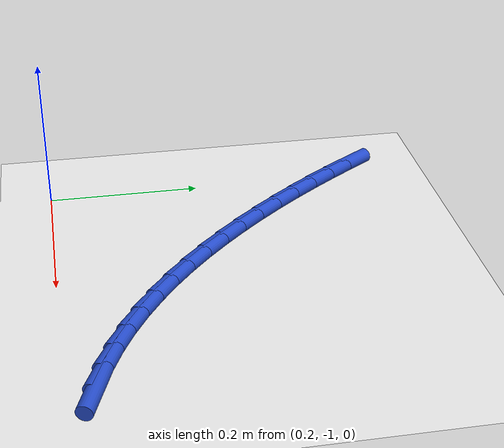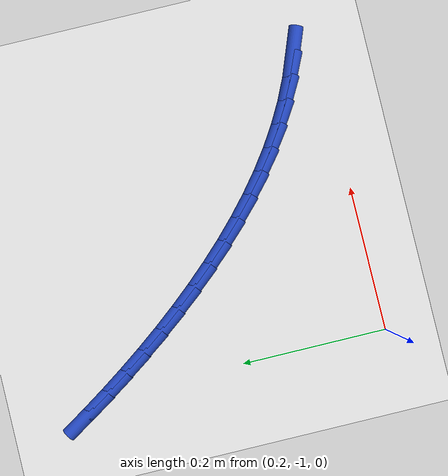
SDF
<sdf version="1.6">
 <world name="default">
  <model name="ground_plane">
   <static>1</static>
   <link name="link">
    <collision name="collision">
     <geometry><plane><normal>0 0 1</normal><size>100 100</size></plane></geometry>
     <surface><friction><ode><mu>100</mu><mu2>50</mu2></ode></friction></surface>
    </collision>
    <visual name="visual">
     <cast_shadows>0</cast_shadows>
     <geometry><plane><normal>0 0 1</normal><size>100 100</size></plane></geometry>
     <material>
      <script><uri>file://media/materials/scripts/gazebo.material</uri><name>Gazebo/WhiteGlow</name></script>
     </material>
    </visual>
   </link>
  </model>
  <model name="line">
   <link name="link_176">
    <pose>0.5949250606601602 -0.9646039630717419 0.01 0 1.57 -0.3650732967089802</pose>
    <collision name="collision">
     <geometry><cylinder><radius>0.01</radius><length>0.08</length></cylinder></geometry>
    </collision>
    <visual name="visual">
     <material>
      <script><name>Gazebo/Blue</name><uri>file://media/materials/scripts/gazebo.material</uri></script>
     </material>
     <geometry><cylinder><radius>0.01</radius><length>0.08</length></cylinder></geometry>
    </visual>
   </link>
   <link name="link_177">
    <pose>0.564205603894862 -0.9528628005327083 0.01 0 1.57 -0.4389076325155758</pose>
    <collision name="collision">
     <geometry><cylinder><radius>0.01</radius><length>0.08</length></cylinder></geometry>
    </collision>
    <visual name="visual">
     <material>
      <script><name>Gazebo/Blue</name><uri>file://media/materials/scripts/gazebo.material</uri></script>
     </material>
     <geometry><cylinder><radius>0.01</radius><length>0.08</length></cylinder></geometry>
    </visual>
   </link>
   <link name="link_178">
    <pose>0.5340884954208569 -0.9387244221691989 0.01 0 1.57 -0.5066792142256197</pose>
    <collision name="collision">
     <geometry><cylinder><radius>0.01</radius><length>0.08</length></cylinder></geometry>
    </collision>
    <visual name="visual">
     <material>
      <script><name>Gazebo/Blue</name><uri>file://media/materials/scripts/gazebo.material</uri></script>
     </material>
     <geometry><cylinder><radius>0.01</radius><length>0.08</length></cylinder></geometry>
    </visual>
   </link>
   <link name="link_179">
    <pose>0.5045900254166887 -0.9223525653410036 0.01 0 1.57 -0.5685492014472167</pose>
    <collision name="collision">
     <geometry><cylinder><radius>0.01</radius><length>0.08</length></cylinder></geometry>
    </collision>
    <visual name="visual">
     <material>
      <script><name>Gazebo/Blue</name><uri>file://media/materials/scripts/gazebo.material</uri></script>
     </material>
     <geometry><cylinder><radius>0.01</radius><length>0.08</length></cylinder></geometry>
    </visual>
   </link>
   <link name="link_180">
    <pose>0.4757264840609015 -0.903910967407911 0.01 0 1.57 -0.6248333037145309</pose>
    <collision name="collision">
     <geometry><cylinder><radius>0.01</radius><length>0.08</length></cylinder></geometry>
    </collision>
    <visual name="visual">
     <material>
      <script><name>Gazebo/Blue</name><uri>file://media/materials/scripts/gazebo.material</uri></script>
     </material>
     <geometry><cylinder><radius>0.01</radius><length>0.08</length></cylinder></geometry>
    </visual>
   </link>
   <link name="link_181">
    <pose>0.44751416153203893 -0.883563365729711 0.01 0 1.57 -0.6759355718533259</pose>
    <collision name="collision">
     <geometry><cylinder><radius>0.01</radius><length>0.08</length></cylinder></geometry>
    </collision>
    <visual name="visual">
     <material>
      <script><name>Gazebo/Blue</name><uri>file://media/materials/scripts/gazebo.material</uri></script>
     </material>
     <geometry><cylinder><radius>0.01</radius><length>0.08</length></cylinder></geometry>
    </visual>
   </link>
   <link name="link_182">
    <pose>0.4199693480086449 -0.8614734976661922 0.01 0 1.57 -0.7222986960900416</pose>
    <collision name="collision">
     <geometry><cylinder><radius>0.01</radius><length>0.08</length></cylinder></geometry>
    </collision>
    <visual name="visual">
     <material>
      <script><name>Gazebo/Blue</name><uri>file://media/materials/scripts/gazebo.material</uri></script>
     </material>
     <geometry><cylinder><radius>0.01</radius><length>0.08</length></cylinder></geometry>
    </visual>
   </link>
   <link name="link_183">
    <pose>0.3931083336692627 -0.8378051005771434 0.01 0 1.57 -0.7643698484526311</pose>
    <collision name="collision">
     <geometry><cylinder><radius>0.01</radius><length>0.08</length></cylinder></geometry>
    </collision>
    <visual name="visual">
     <material>
      <script><name>Gazebo/Blue</name><uri>file://media/materials/scripts/gazebo.material</uri></script>
     </material>
     <geometry><cylinder><radius>0.01</radius><length>0.08</length></cylinder></geometry>
    </visual>
   </link>
   <link name="link_184">
    <pose>0.36694740869243747 -0.812721911822355 0.01 0 1.57 -0.8025791386009277</pose>
    <collision name="collision">
     <geometry><cylinder><radius>0.01</radius><length>0.08</length></cylinder></geometry>
    </collision>
    <visual name="visual">
     <material>
      <script><name>Gazebo/Blue</name><uri>file://media/materials/scripts/gazebo.material</uri></script>
     </material>
     <geometry><cylinder><radius>0.01</radius><length>0.08</length></cylinder></geometry>
    </visual>
   </link>
   <link name="link_185">
    <pose>0.34150286325671253 -0.7863876687616159 0.01 0 1.57 -0.8373273741165929</pose>
    <collision name="collision">
     <geometry><cylinder><radius>0.01</radius><length>0.08</length></cylinder></geometry>
    </collision>
    <visual name="visual">
     <material>
      <script><name>Gazebo/Blue</name><uri>file://media/materials/scripts/gazebo.material</uri></script>
     </material>
     <geometry><cylinder><radius>0.01</radius><length>0.08</length></cylinder></geometry>
    </visual>
   </link>
   <link name="link_186">
    <pose>0.31679098754063156 -0.7589661087547147 0.01 0 1.57 -0.8689802103175716</pose>
    <collision name="collision">
     <geometry><cylinder><radius>0.01</radius><length>0.08</length></cylinder></geometry>
    </collision>
    <visual name="visual">
     <material>
      <script><name>Gazebo/Blue</name><uri>file://media/materials/scripts/gazebo.material</uri></script>
     </material>
     <geometry><cylinder><radius>0.01</radius><length>0.08</length></cylinder></geometry>
    </visual>
   </link>
   <link name="link_187">
    <pose>0.2928280717227389 -0.7306209691614416 0.01 0 1.57 -0.8978664206611161</pose>
    <collision name="collision">
     <geometry><cylinder><radius>0.01</radius><length>0.08</length></cylinder></geometry>
    </collision>
    <visual name="visual">
     <material>
      <script><name>Gazebo/Blue</name><uri>file://media/materials/scripts/gazebo.material</uri></script>
     </material>
     <geometry><cylinder><radius>0.01</radius><length>0.08</length></cylinder></geometry>
    </visual>
   </link>
   <link name="link_188">
    <pose>0.26963040598157795 -0.7015159873415848 0.01 0 1.57 -0.9242786527423127</pose>
    <collision name="collision">
     <geometry><cylinder><radius>0.01</radius><length>0.08</length></cylinder></geometry>
    </collision>
    <visual name="visual">
     <material>
      <script><name>Gazebo/Blue</name><uri>file://media/materials/scripts/gazebo.material</uri></script>
     </material>
     <geometry><cylinder><radius>0.01</radius><length>0.08</length></cylinder></geometry>
    </visual>
   </link>
   <link name="link_189">
    <pose>0.24721428049569233 -0.6718149006549334 0.01 0 1.57 -0.9484755545639858</pose>
    <collision name="collision">
     <geometry><cylinder><radius>0.01</radius><length>0.08</length></cylinder></geometry>
    </collision>
    <visual name="visual">
     <material>
      <script><name>Gazebo/Blue</name><uri>file://media/materials/scripts/gazebo.material</uri></script>
     </material>
     <geometry><cylinder><radius>0.01</radius><length>0.08</length></cylinder></geometry>
    </visual>
   </link>
   <link name="link_190">
    <pose>0.22559598544362697 -0.6416814464612779 0.01 0 1.57 -0.9706845424694749</pose>
    <collision name="collision">
     <geometry><cylinder><radius>0.01</radius><length>0.08</length></cylinder></geometry>
    </collision>
    <visual name="visual">
     <material>
      <script><name>Gazebo/Blue</name><uri>file://media/materials/scripts/gazebo.material</uri></script>
     </material>
     <geometry><cylinder><radius>0.01</radius><length>0.08</length></cylinder></geometry>
    </visual>
   </link>
   <link name="link_191">
    <pose>0.2047918110039251 -0.6112793621204068 0.01 0 1.57 -0.9911047520912722</pose>
    <collision name="collision">
     <geometry><cylinder><radius>0.01</radius><length>0.08</length></cylinder></geometry>
    </collision>
    <visual name="visual">
     <material>
      <script><name>Gazebo/Blue</name><uri>file://media/materials/scripts/gazebo.material</uri></script>
     </material>
     <geometry><cylinder><radius>0.01</radius><length>0.08</length></cylinder></geometry>
    </visual>
   </link>
   <link name="link_192">
    <pose>0.18481804735513074 -0.5807723849921093 0.01 0 1.57 -1.0099642075909219</pose>
    <collision name="collision">
     <geometry><cylinder><radius>0.01</radius><length>0.08</length></cylinder></geometry>
    </collision>
    <visual name="visual">
     <material>
      <script><name>Gazebo/Blue</name><uri>file://media/materials/scripts/gazebo.material</uri></script>
     </material>
     <geometry><cylinder><radius>0.01</radius><length>0.08</length></cylinder></geometry>
    </visual>
   </link>
  </model>
 </world>
</sdf>
